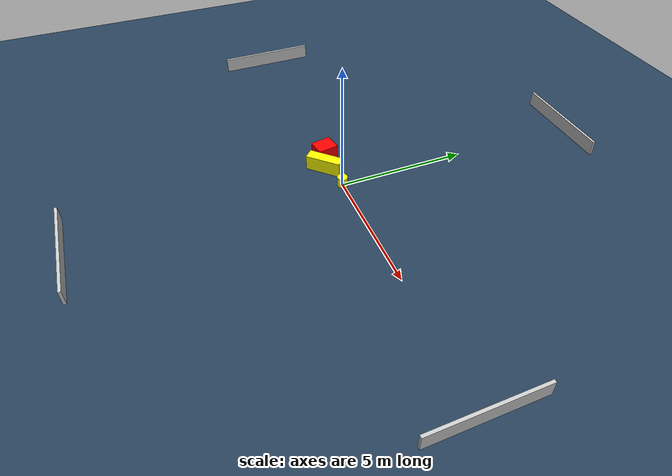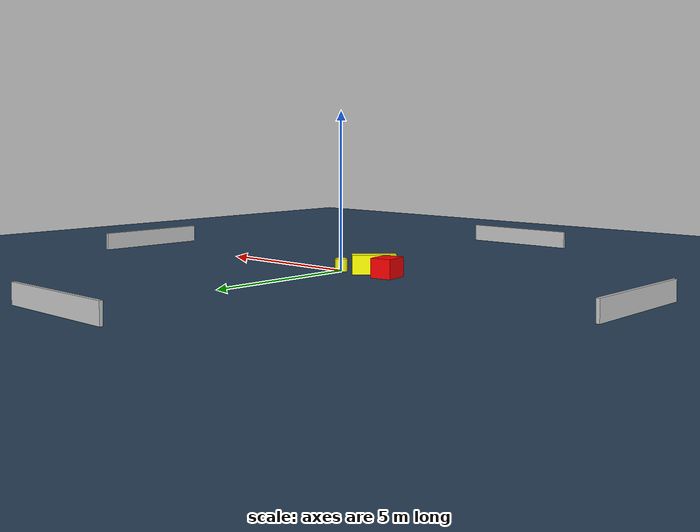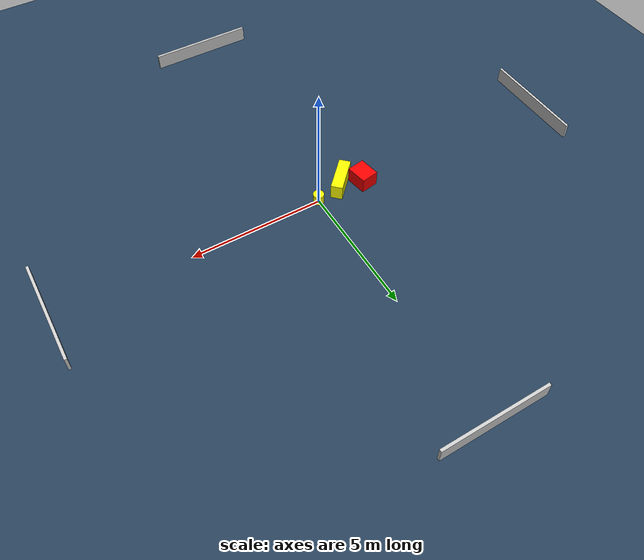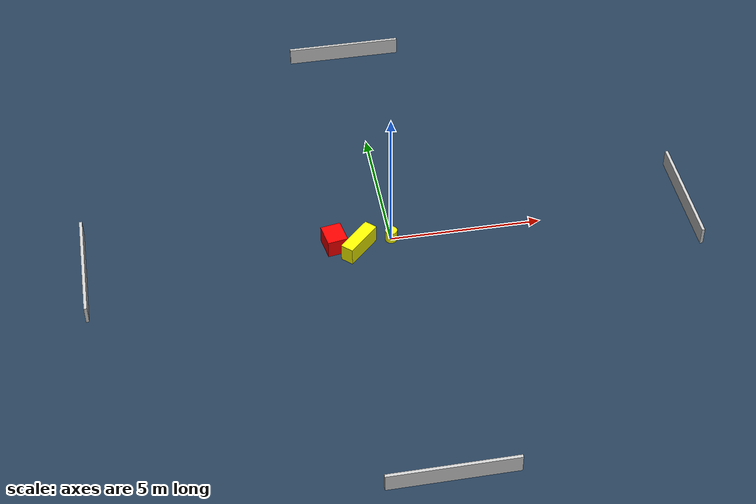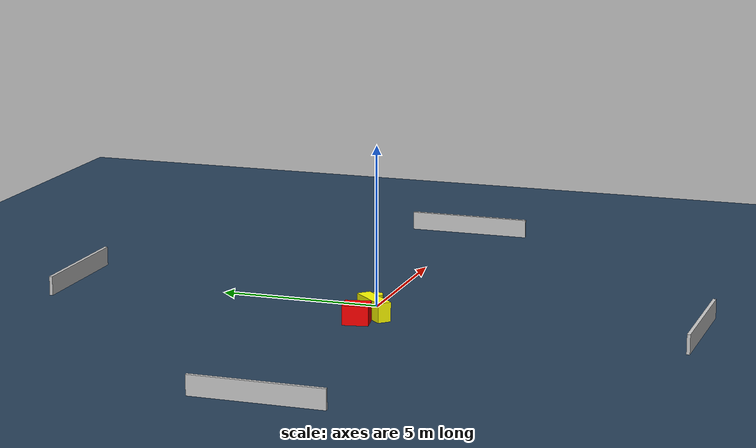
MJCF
<?xml version="1.0" ?>
<mujoco model="generated_environment">
  <option timestep="0.01" integrator="RK4" cone="elliptic"/>
  <default>
    <geom density="1"/>
  </default>
  <asset>
    <texture builtin="gradient" height="3072" name="skybox" rgb1="0.3 0.5 0.7" rgb2="0 0 0" type="skybox" width="512"/>
    <texture builtin="checker" height="300" name="groundplane" rgb1="0.2 0.3 0.4" rgb2="0.1 0.2 0.3" type="2d" width="300"/>
    <material name="groundplane" reflectance="0.2" texrepeat="5 5" texture="groundplane"/>
  </asset>
  <worldbody>
    <light dir="0 0 -1" directional="true" pos="0 0 1.5"/>
    <geom condim="3" friction="0.5 0.005 0.001" material="groundplane" name="floor" pos="0 0 0" size="0 0 0.05" type="plane"/>
    <body name="walls">
      <geom name="wall_1" condim="4" pos="-10.0 0.0 0.3" rgba="0.800000011920929 0.800000011920929 0.800000011920929 1.0" size="0.05 2.0 0.3" type="box"/>
      <geom name="wall_2" condim="4" pos="10.0 0.0 0.3" rgba="0.800000011920929 0.800000011920929 0.800000011920929 1.0" size="0.05 2.0 0.3" type="box"/>
      <geom name="wall_3" condim="4" pos="0.0 -10.0 0.3" rgba="0.800000011920929 0.800000011920929 0.800000011920929 1.0" size="2.0 0.05 0.3" type="box"/>
      <geom name="wall_4" condim="4" pos="0.0 10.0 0.3" rgba="0.800000011920929 0.800000011920929 0.800000011920929 1.0" size="2.0 0.05 0.3" type="box"/>
    </body>
    <body name="robot">
      <joint name="joint_x" type="slide" pos="0 0 0" axis="1 0 0"/>
      <joint name="joint_y" type="slide" pos="0 0 0" axis="0 1 0"/>
      <geom name="robot" type="cylinder" pos="0.0 0.0 0.2" size="0.2 0.2 0.0" mass="5.0" friction="1.0 0.005 0.0001" condim="4" rgba="1.0 1.0 0.0 1.0"/>
    </body>
    <body name="obstacle_1_movable">
      <geom name="obstacle_1_movable" condim="4" pos="-1.1177656762475765 -0.29287338983609146 0.3" euler="0 0 135.6083195248307" friction="0.0 0.005 0.001" rgba="1.0 1.0 0.0 1.0" size="0.21655192580985638 0.6881191793246962 0.3" type="box" mass="0.1"/>
      <joint type="free"/>
    </body>
    <body name="obstacle_2_static">
      <geom name="obstacle_2_static" condim="4" pos="-1.8913710464604445 -0.0126185586406286 0.3" euler="0 0 9.752570096268931" friction="0.0 0.005 0.001" rgba="1.0 0.0 0.0 1.0" size="0.33605302243983504 0.3995443280052168 0.3" type="box"/>
    </body>
  </worldbody>
  <actuator>
    <motor name="actuator_x" joint="joint_x" gear="1" ctrlrange="-1 1"/>
    <motor name="actuator_y" joint="joint_y" gear="1" ctrlrange="-1 1"/>
  </actuator>
</mujoco>
